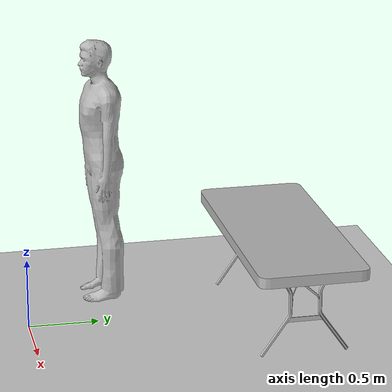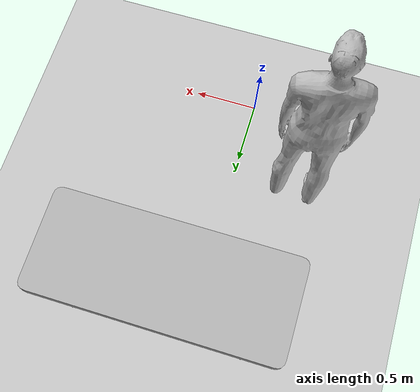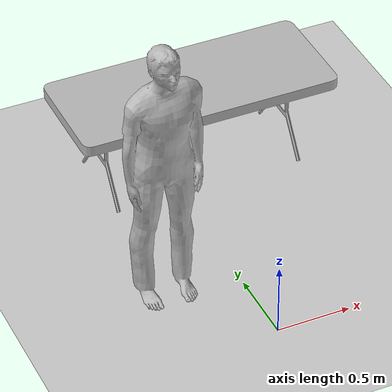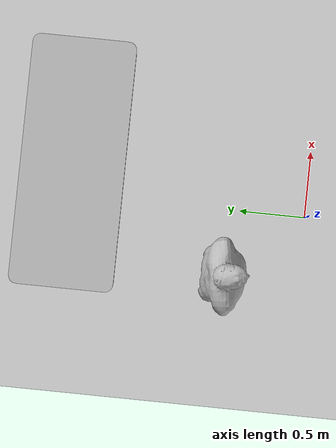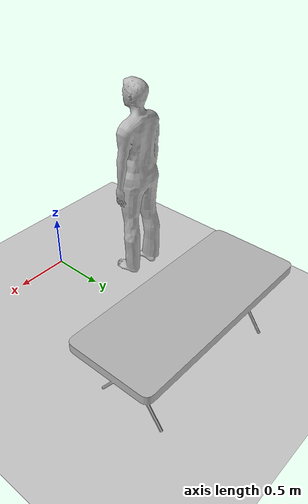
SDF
<sdf version="1.7">
 <world name="default">
  <light name="sun" type="directional">
   <pose>0 0 10 0 -0 0</pose>
   <diffuse>0.8 0.8 0.8 1</diffuse>
   <specular>0.2 0.2 0.2 1</specular>
   <attenuation>
    <range>1000</range>
    <constant>0.9</constant>
    <linear>0.01</linear>
    <quadratic>0.001</quadratic>
   </attenuation>
   <direction>-0.5 0.1 -0.9</direction>
   <spot><inner_angle>0</inner_angle><outer_angle>0</outer_angle><falloff>0</falloff></spot>
  </light>
  <model name="ground_plane">
   <static>1</static>
   <link name="link">
    <collision name="collision">
     <geometry><plane><normal>0 0 1</normal><size>100 100</size></plane></geometry>
     <surface>
      <contact><collide_bitmask>65535</collide_bitmask></contact>
      <friction><ode><mu>100</mu><mu2>50</mu2></ode></friction>
     </surface>
    </collision>
    <visual name="visual">
     <cast_shadows>0</cast_shadows>
     <geometry><plane><normal>0 0 1</normal><size>100 100</size></plane></geometry>
     <material>
      <script><uri>file://media/materials/scripts/gazebo.material</uri><name>Gazebo/Grey</name></script>
     </material>
    </visual>
   </link>
  </model>
  <gravity>0 0 -9.8</gravity>
  <magnetic_field>6e-06 2.3e-05 -4.2e-05</magnetic_field>
  <atmosphere type="adiabatic"/>
  <physics type="ode">
   <max_step_size>0.001</max_step_size>
   <real_time_factor>1</real_time_factor>
   <real_time_update_rate>1000</real_time_update_rate>
  </physics>
  <scene><ambient>0.4 0.4 0.4 1</ambient><background>0.7 0.7 0.7 1</background><shadows>1</shadows></scene>
  <spherical_coordinates>
   <surface_model>EARTH_WGS84</surface_model>
   <latitude_deg>0</latitude_deg>
   <longitude_deg>0</longitude_deg>
   <elevation>0</elevation>
   <heading_deg>0</heading_deg>
  </spherical_coordinates>
  <model name="foldable_table">
   <static>1</static>
   <link name="base_link">
    <visual name="visual">
     <geometry><mesh><uri>/home/dev/.gazebo/models/foldable_table/mesh/foldable_table.dae</uri></mesh></geometry>
    </visual>
    <collision name="collision">
     <pose>0 0 0.35 0 -0 0</pose>
     <geometry><box><size>1.82 0.74 0.67</size></box></geometry>
    </collision>
   </link>
   <pose>0.210198 1.76622 0 0 -0 0</pose>
  </model>
  <model name="person_standing">
   <static>1</static>
   <link name="link">
    <inertial>
     <pose>0 -0.4 0.95 1.57 -0 1.57</pose>
     <mass>80</mass>
     <inertia><ixx>24.88</ixx><ixy>0</ixy><ixz>0</ixz><iyy>25.73</iyy><iyz>0</iyz><izz>2.48</izz></inertia>
    </inertial>
    <collision name="bottom">
     <pose>0 -0.1 0.01 0 -0 0</pose>
     <geometry><box><size>0.5 0.35 0.02</size></box></geometry>
    </collision>
    <collision name="person">
     <pose>0 0 0.02 0.04 -0 0</pose>
     <geometry><mesh><uri>model://person_standing/meshes/standing.dae</uri></mesh></geometry>
    </collision>
    <visual name="visual">
     <pose>0 0 0.02 0.04 -0 0</pose>
     <geometry><mesh><uri>model://person_standing/meshes/standing.dae</uri></mesh></geometry>
    </visual>
   </link>
   <pose>-0.49521 0.700758 0 0 -0 0</pose>
  </model>
 </world>
</sdf>
